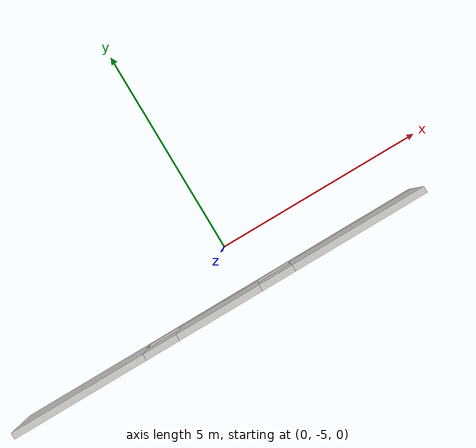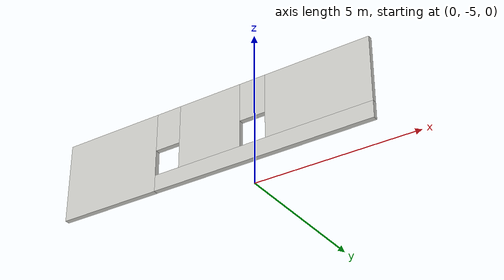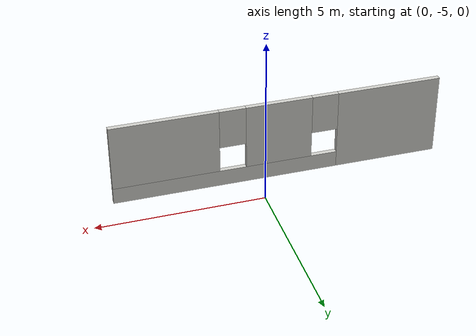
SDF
<?xml version='1.0'?>
<sdf version='1.6'>
  <model name='wecobot'>
    <pose frame=''>-0.739898 -3.08319 0 0 -0 0</pose>
    <link name='Wall_3'>
      <pose frame=''>0 -3.00819 0 0 -0 0</pose>
      <visual name='Wall_3_Visual_0'>
        <pose frame=''>-3.40274 0 1.25 0 -0 0</pose>
        <geometry>
          <box>
            <size>3.19452 0.15 2.5</size>
          </box>
        </geometry>
        <material>
          <script>
            <uri>file://media/materials/scripts/gazebo.material</uri>
            <name>Gazebo/CeilingTiled</name>
          </script>
          <ambient>1 1 1 1</ambient>
        </material>
        <meta>
          <layer>0</layer>
        </meta>
      </visual>
      <collision name='Wall_3_Collision_0'>
        <geometry>
          <box>
            <size>3.19452 0.15 2.5</size>
          </box>
        </geometry>
        <pose frame=''>-3.40274 0 1.25 0 -0 0</pose>
      </collision>
      <visual name='Wall_3_Visual_1'>
        <pose frame=''>1.59726 0 0.25 0 -0 0</pose>
        <geometry>
          <box>
            <size>6.80548 0.15 0.5</size>
          </box>
        </geometry>
        <material>
          <script>
            <uri>file://media/materials/scripts/gazebo.material</uri>
            <name>Gazebo/CeilingTiled</name>
          </script>
          <ambient>1 1 1 1</ambient>
        </material>
        <meta>
          <layer>0</layer>
        </meta>
      </visual>
      <collision name='Wall_3_Collision_1'>
        <geometry>
          <box>
            <size>6.80548 0.15 0.5</size>
          </box>
        </geometry>
        <pose frame=''>1.59726 0 0.25 0 -0 0</pose>
      </collision>
      <visual name='Wall_3_Visual_2'>
        <pose frame=''>0.001326 0 1.5 0 -0 0</pose>
        <geometry>
          <box>
            <size>2.01362 0.15 2</size>
          </box>
        </geometry>
        <material>
          <script>
            <uri>file://media/materials/scripts/gazebo.material</uri>
            <name>Gazebo/CeilingTiled</name>
          </script>
          <ambient>1 1 1 1</ambient>
        </material>
        <meta>
          <layer>0</layer>
        </meta>
      </visual>
      <collision name='Wall_3_Collision_2'>
        <geometry>
          <box>
            <size>2.01362 0.15 2</size>
          </box>
        </geometry>
        <pose frame=''>0.001326 0 1.5 0 -0 0</pose>
      </collision>
      <visual name='Wall_3_Visual_3'>
        <pose frame=''>3.40407 0 1.5 0 -0 0</pose>
        <geometry>
          <box>
            <size>3.19186 0.15 2</size>
          </box>
        </geometry>
        <material>
          <script>
            <uri>file://media/materials/scripts/gazebo.material</uri>
            <name>Gazebo/CeilingTiled</name>
          </script>
          <ambient>1 1 1 1</ambient>
        </material>
        <meta>
          <layer>0</layer>
        </meta>
      </visual>
      <collision name='Wall_3_Collision_3'>
        <geometry>
          <box>
            <size>3.19186 0.15 2</size>
          </box>
        </geometry>
        <pose frame=''>3.40407 0 1.5 0 -0 0</pose>
      </collision>
      <visual name='Wall_3_Visual_4'>
        <pose frame=''>-1.40548 0 1.9 0 -0 0</pose>
        <geometry>
          <box>
            <size>0.8 0.15 1.2</size>
          </box>
        </geometry>
        <material>
          <script>
            <uri>file://media/materials/scripts/gazebo.material</uri>
            <name>Gazebo/CeilingTiled</name>
          </script>
          <ambient>1 1 1 1</ambient>
        </material>
        <meta>
          <layer>0</layer>
        </meta>
      </visual>
      <collision name='Wall_3_Collision_4'>
        <geometry>
          <box>
            <size>0.8 0.15 1.2</size>
          </box>
        </geometry>
        <pose frame=''>-1.40548 0 1.9 0 -0 0</pose>
      </collision>
      <visual name='Wall_3_Visual_5'>
        <pose frame=''>1.40813 0 1.9 0 -0 0</pose>
        <geometry>
          <box>
            <size>0.8 0.15 1.2</size>
          </box>
        </geometry>
        <material>
          <script>
            <uri>file://media/materials/scripts/gazebo.material</uri>
            <name>Gazebo/CeilingTiled</name>
          </script>
          <ambient>1 1 1 1</ambient>
        </material>
        <meta>
          <layer>0</layer>
        </meta>
      </visual>
      <collision name='Wall_3_Collision_5'>
        <geometry>
          <box>
            <size>0.8 0.15 1.2</size>
          </box>
        </geometry>
        <pose frame=''>1.40813 0 1.9 0 -0 0</pose>
      </collision>
    </link>
    <static>1</static>
  </model>
</sdf>
